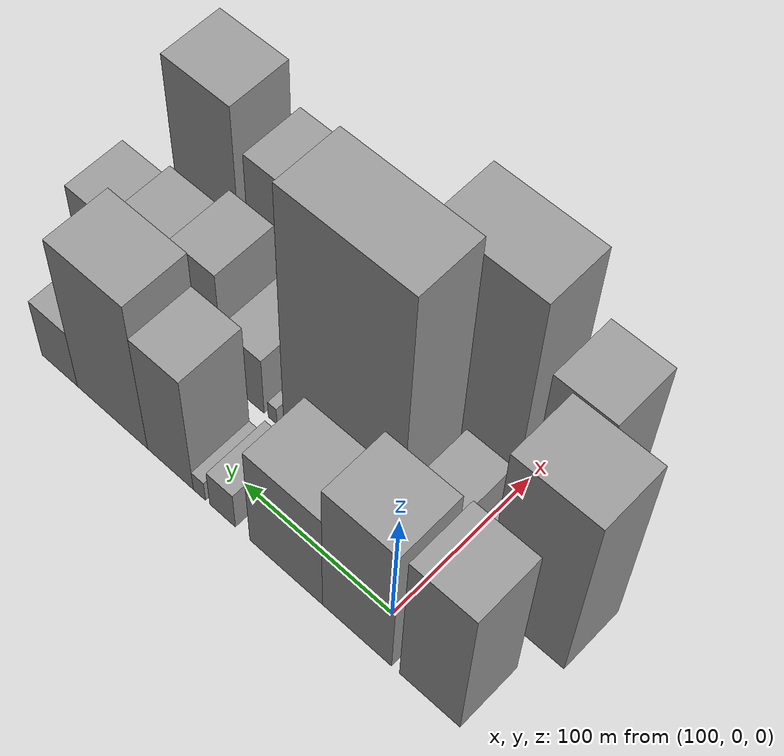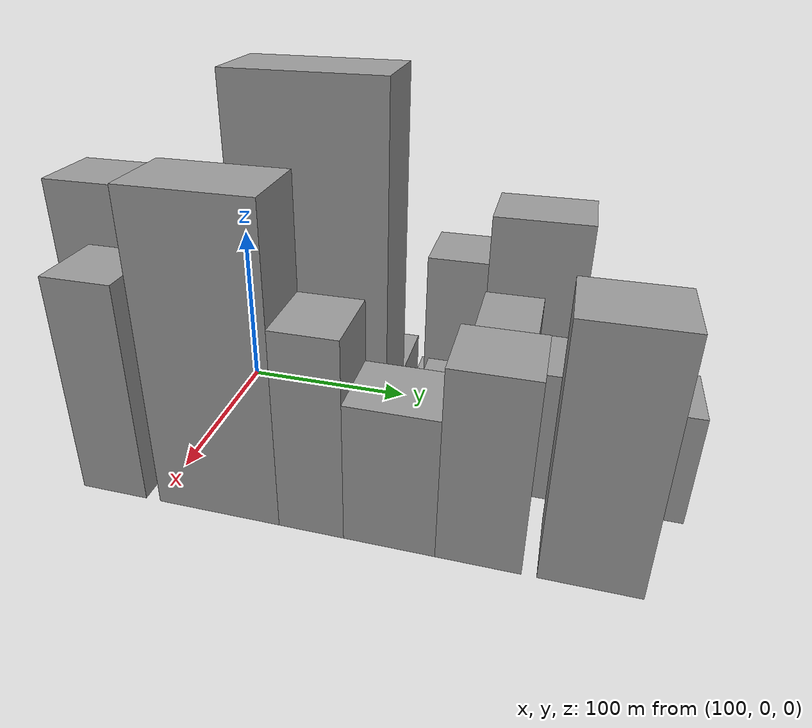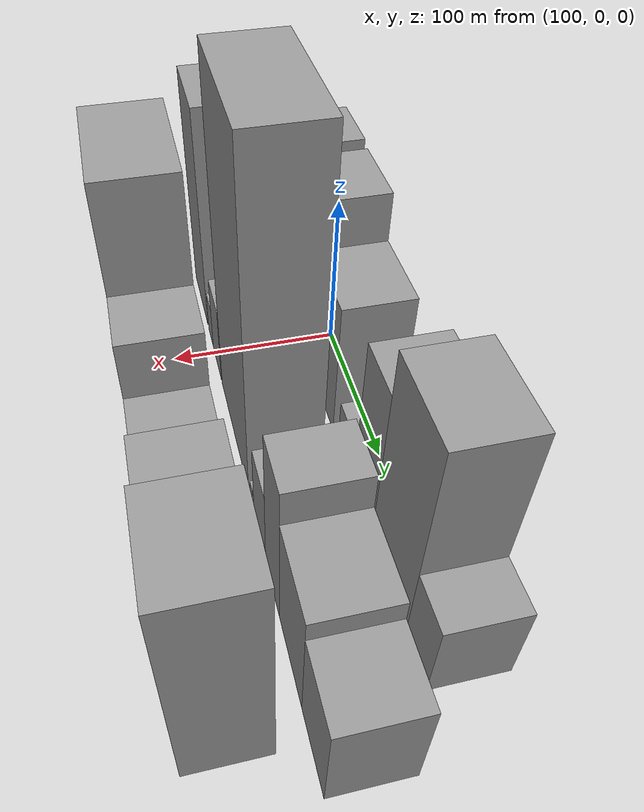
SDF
<sdf version="1.6">
 <world name="default">
  <model name="building_17">
   <static>1</static>
   <pose>100.0000 -41.7449 0 0.000000 0.000000 0.000000</pose>
   <link name="link">
    <pose>0 0 61.50 0 0 0</pose>
    <collision name="collision"><geometry><box><size>40.0000 38.1003 123.0000</size></box></geometry></collision>
    <visual name="visual">
     <cast_shadows>0</cast_shadows>
     <geometry><box><size>40.0000 38.1003 123.0000</size></box></geometry>
     <material>
      <script>
       <uri>model://grey_wall/materials/scripts</uri>
       <uri>model://grey_wall/materials/textures</uri>
       <name>vrc/grey_wall</name>
      </script>
     </material>
    </visual>
   </link>
  </model>
  <model name="building_18">
   <static>1</static>
   <pose>100.0000 4.8909 0 0.000000 0.000000 0.000000</pose>
   <link name="link">
    <pose>0 0 60.00 0 0 0</pose>
    <collision name="collision"><geometry><box><size>40.0000 45.1713 120.0000</size></box></geometry></collision>
    <visual name="visual">
     <cast_shadows>0</cast_shadows>
     <geometry><box><size>40.0000 45.1713 120.0000</size></box></geometry>
     <material>
      <script>
       <uri>model://grey_wall/materials/scripts</uri>
       <uri>model://grey_wall/materials/textures</uri>
       <name>vrc/grey_wall</name>
      </script>
     </material>
    </visual>
   </link>
  </model>
  <model name="building_19">
   <static>1</static>
   <pose>100.0000 52.0612 0 0.000000 0.000000 0.000000</pose>
   <link name="link">
    <pose>0 0 45.00 0 0 0</pose>
    <collision name="collision"><geometry><box><size>40.0000 49.1694 90.0000</size></box></geometry></collision>
    <visual name="visual">
     <cast_shadows>0</cast_shadows>
     <geometry><box><size>40.0000 49.1694 90.0000</size></box></geometry>
     <material>
      <script>
       <uri>model://grey_wall/materials/scripts</uri>
       <uri>model://grey_wall/materials/textures</uri>
       <name>vrc/grey_wall</name>
      </script>
     </material>
    </visual>
   </link>
  </model>
  <model name="building_20">
   <static>1</static>
   <pose>100.0000 95.6489 0 0.000000 0.000000 0.000000</pose>
   <link name="link">
    <pose>0 0 16.50 0 0 0</pose>
    <collision name="collision"><geometry><box><size>40.0000 18.0059 33.0000</size></box></geometry></collision>
    <visual name="visual">
     <cast_shadows>0</cast_shadows>
     <geometry><box><size>40.0000 18.0059 33.0000</size></box></geometry>
     <material>
      <script>
       <uri>model://grey_wall/materials/scripts</uri>
       <uri>model://grey_wall/materials/textures</uri>
       <name>vrc/grey_wall</name>
      </script>
     </material>
    </visual>
   </link>
  </model>
  <model name="building_21">
   <static>1</static>
   <pose>100.0000 111.9884 0 0.000000 0.000000 0.000000</pose>
   <link name="link">
    <pose>0 0 9.00 0 0 0</pose>
    <collision name="collision"><geometry><box><size>40.0000 8.6732 18.0000</size></box></geometry></collision>
    <visual name="visual">
     <cast_shadows>0</cast_shadows>
     <geometry><box><size>40.0000 8.6732 18.0000</size></box></geometry>
     <material>
      <script>
       <uri>model://grey_wall/materials/scripts</uri>
       <uri>model://grey_wall/materials/textures</uri>
       <name>vrc/grey_wall</name>
      </script>
     </material>
    </visual>
   </link>
  </model>
  <model name="building_22">
   <static>1</static>
   <pose>100.0000 132.8876 0 0.000000 0.000000 0.000000</pose>
   <link name="link">
    <pose>0 0 52.50 0 0 0</pose>
    <collision name="collision"><geometry><box><size>40.0000 33.1251 105.0000</size></box></geometry></collision>
    <visual name="visual">
     <cast_shadows>0</cast_shadows>
     <geometry><box><size>40.0000 33.1251 105.0000</size></box></geometry>
     <material>
      <script>
       <uri>model://grey_wall/materials/scripts</uri>
       <uri>model://grey_wall/materials/textures</uri>
       <name>vrc/grey_wall</name>
      </script>
     </material>
    </visual>
   </link>
  </model>
  <model name="building_23">
   <static>1</static>
   <pose>100.0000 175.6709 0 0.000000 0.000000 0.000000</pose>
   <link name="link">
    <pose>0 0 66.00 0 0 0</pose>
    <collision name="collision"><geometry><box><size>40.0000 52.4415 132.0000</size></box></geometry></collision>
    <visual name="visual">
     <cast_shadows>0</cast_shadows>
     <geometry><box><size>40.0000 52.4415 132.0000</size></box></geometry>
     <material>
      <script>
       <uri>model://grey_wall/materials/scripts</uri>
       <uri>model://grey_wall/materials/textures</uri>
       <name>vrc/grey_wall</name>
      </script>
     </material>
    </visual>
   </link>
  </model>
  <model name="building_24">
   <static>1</static>
   <pose>100.0000 215.5347 0 0.000000 0.000000 0.000000</pose>
   <link name="link">
    <pose>0 0 25.50 0 0 0</pose>
    <collision name="collision"><geometry><box><size>40.0000 27.2861 51.0000</size></box></geometry></collision>
    <visual name="visual">
     <cast_shadows>0</cast_shadows>
     <geometry><box><size>40.0000 27.2861 51.0000</size></box></geometry>
     <material>
      <script>
       <uri>model://grey_wall/materials/scripts</uri>
       <uri>model://grey_wall/materials/textures</uri>
       <name>vrc/grey_wall</name>
      </script>
     </material>
    </visual>
   </link>
  </model>
  <model name="building_51">
   <static>1</static>
   <pose>155.0000 -52.1764 0 0.000000 0.000000 0.000000</pose>
   <link name="link">
    <pose>0 0 75.00 0 0 0</pose>
    <collision name="collision"><geometry><box><size>40.0000 49.9542 150.0000</size></box></geometry></collision>
    <visual name="visual">
     <cast_shadows>0</cast_shadows>
     <geometry><box><size>40.0000 49.9542 150.0000</size></box></geometry>
     <material>
      <script>
       <uri>model://grey_wall/materials/scripts</uri>
       <uri>model://grey_wall/materials/textures</uri>
       <name>vrc/grey_wall</name>
      </script>
     </material>
    </visual>
   </link>
  </model>
  <model name="building_52">
   <static>1</static>
   <pose>155.0000 -13.8800 0 0.000000 0.000000 0.000000</pose>
   <link name="link">
    <pose>0 0 15.00 0 0 0</pose>
    <collision name="collision"><geometry><box><size>40.0000 16.6385 30.0000</size></box></geometry></collision>
    <visual name="visual">
     <cast_shadows>0</cast_shadows>
     <geometry><box><size>40.0000 16.6385 30.0000</size></box></geometry>
     <material>
      <script>
       <uri>model://grey_wall/materials/scripts</uri>
       <uri>model://grey_wall/materials/textures</uri>
       <name>vrc/grey_wall</name>
      </script>
     </material>
    </visual>
   </link>
  </model>
  <model name="building_53">
   <static>1</static>
   <pose>155.0000 9.1053 0 0.000000 0.000000 0.000000</pose>
   <link name="link">
    <pose>0 0 27.00 0 0 0</pose>
    <collision name="collision"><geometry><box><size>40.0000 29.3321 54.0000</size></box></geometry></collision>
    <visual name="visual">
     <cast_shadows>0</cast_shadows>
     <geometry><box><size>40.0000 29.3321 54.0000</size></box></geometry>
     <material>
      <script>
       <uri>model://grey_wall/materials/scripts</uri>
       <uri>model://grey_wall/materials/textures</uri>
       <name>vrc/grey_wall</name>
      </script>
     </material>
    </visual>
   </link>
  </model>
  <model name="building_54">
   <static>1</static>
   <pose>155.0000 67.0900 0 0.000000 0.000000 0.000000</pose>
   <link name="link">
    <pose>0 0 105.00 0 0 0</pose>
    <collision name="collision"><geometry><box><size>40.0000 80.6372 210.0000</size></box></geometry></collision>
    <visual name="visual">
     <cast_shadows>0</cast_shadows>
     <geometry><box><size>40.0000 80.6372 210.0000</size></box></geometry>
     <material>
      <script>
       <uri>model://grey_wall/materials/scripts</uri>
       <uri>model://grey_wall/materials/textures</uri>
       <name>vrc/grey_wall</name>
      </script>
     </material>
    </visual>
   </link>
  </model>
  <model name="building_55">
   <static>1</static>
   <pose>155.0000 115.5059 0 0.000000 0.000000 0.000000</pose>
   <link name="link">
    <pose>0 0 7.50 0 0 0</pose>
    <collision name="collision"><geometry><box><size>40.0000 6.1946 15.0000</size></box></geometry></collision>
    <visual name="visual">
     <cast_shadows>0</cast_shadows>
     <geometry><box><size>40.0000 6.1946 15.0000</size></box></geometry>
     <material>
      <script>
       <uri>model://grey_wall/materials/scripts</uri>
       <uri>model://grey_wall/materials/textures</uri>
       <name>vrc/grey_wall</name>
      </script>
     </material>
    </visual>
   </link>
  </model>
  <model name="building_56">
   <static>1</static>
   <pose>155.0000 135.9411 0 0.000000 0.000000 0.000000</pose>
   <link name="link">
    <pose>0 0 25.50 0 0 0</pose>
    <collision name="collision"><geometry><box><size>40.0000 28.6758 51.0000</size></box></geometry></collision>
    <visual name="visual">
     <cast_shadows>0</cast_shadows>
     <geometry><box><size>40.0000 28.6758 51.0000</size></box></geometry>
     <material>
      <script>
       <uri>model://grey_wall/materials/scripts</uri>
       <uri>model://grey_wall/materials/textures</uri>
       <name>vrc/grey_wall</name>
      </script>
     </material>
    </visual>
   </link>
  </model>
  <model name="building_57">
   <static>1</static>
   <pose>155.0000 165.5249 0 0.000000 0.000000 0.000000</pose>
   <link name="link">
    <pose>0 0 48.00 0 0 0</pose>
    <collision name="collision"><geometry><box><size>40.0000 30.4918 96.0000</size></box></geometry></collision>
    <visual name="visual">
     <cast_shadows>0</cast_shadows>
     <geometry><box><size>40.0000 30.4918 96.0000</size></box></geometry>
     <material>
      <script>
       <uri>model://grey_wall/materials/scripts</uri>
       <uri>model://grey_wall/materials/textures</uri>
       <name>vrc/grey_wall</name>
      </script>
     </material>
    </visual>
   </link>
  </model>
  <model name="building_58">
   <static>1</static>
   <pose>155.0000 202.7437 0 0.000000 0.000000 0.000000</pose>
   <link name="link">
    <pose>0 0 37.50 0 0 0</pose>
    <collision name="collision"><geometry><box><size>40.0000 43.9457 75.0000</size></box></geometry></collision>
    <visual name="visual">
     <cast_shadows>0</cast_shadows>
     <geometry><box><size>40.0000 43.9457 75.0000</size></box></geometry>
     <material>
      <script>
       <uri>model://grey_wall/materials/scripts</uri>
       <uri>model://grey_wall/materials/textures</uri>
       <name>vrc/grey_wall</name>
      </script>
     </material>
    </visual>
   </link>
  </model>
  <model name="building_59">
   <static>1</static>
   <pose>155.0000 243.1077 0 0.000000 0.000000 0.000000</pose>
   <link name="link">
    <pose>0 0 31.50 0 0 0</pose>
    <collision name="collision"><geometry><box><size>40.0000 36.7824 63.0000</size></box></geometry></collision>
    <visual name="visual">
     <cast_shadows>0</cast_shadows>
     <geometry><box><size>40.0000 36.7824 63.0000</size></box></geometry>
     <material>
      <script>
       <uri>model://grey_wall/materials/scripts</uri>
       <uri>model://grey_wall/materials/textures</uri>
       <name>vrc/grey_wall</name>
      </script>
     </material>
    </visual>
   </link>
  </model>
  <model name="building_81">
   <static>1</static>
   <pose>210.0000 -25.8234 0 0.000000 0.000000 0.000000</pose>
   <link name="link">
    <pose>0 0 61.50 0 0 0</pose>
    <collision name="collision"><geometry><box><size>40.0000 37.0112 123.0000</size></box></geometry></collision>
    <visual name="visual">
     <cast_shadows>0</cast_shadows>
     <geometry><box><size>40.0000 37.0112 123.0000</size></box></geometry>
     <material>
      <script>
       <uri>model://grey_wall/materials/scripts</uri>
       <uri>model://grey_wall/materials/textures</uri>
       <name>vrc/grey_wall</name>
      </script>
     </material>
    </visual>
   </link>
  </model>
  <model name="building_82">
   <static>1</static>
   <pose>210.0000 33.7337 0 0.000000 0.000000 0.000000</pose>
   <link name="link">
    <pose>0 0 85.50 0 0 0</pose>
    <collision name="collision"><geometry><box><size>40.0000 66.1031 171.0000</size></box></geometry></collision>
    <visual name="visual">
     <cast_shadows>0</cast_shadows>
     <geometry><box><size>40.0000 66.1031 171.0000</size></box></geometry>
     <material>
      <script>
       <uri>model://grey_wall/materials/scripts</uri>
       <uri>model://grey_wall/materials/textures</uri>
       <name>vrc/grey_wall</name>
      </script>
     </material>
    </visual>
   </link>
  </model>
  <model name="building_83">
   <static>1</static>
   <pose>210.0000 83.6116 0 0.000000 0.000000 0.000000</pose>
   <link name="link">
    <pose>0 0 55.50 0 0 0</pose>
    <collision name="collision"><geometry><box><size>40.0000 33.6527 111.0000</size></box></geometry></collision>
    <visual name="visual">
     <cast_shadows>0</cast_shadows>
     <geometry><box><size>40.0000 33.6527 111.0000</size></box></geometry>
     <material>
      <script>
       <uri>model://grey_wall/materials/scripts</uri>
       <uri>model://grey_wall/materials/textures</uri>
       <name>vrc/grey_wall</name>
      </script>
     </material>
    </visual>
   </link>
  </model>
  <model name="building_84">
   <static>1</static>
   <pose>210.0000 123.0802 0 0.000000 0.000000 0.000000</pose>
   <link name="link">
    <pose>0 0 39.00 0 0 0</pose>
    <collision name="collision"><geometry><box><size>40.0000 45.2846 78.0000</size></box></geometry></collision>
    <visual name="visual">
     <cast_shadows>0</cast_shadows>
     <geometry><box><size>40.0000 45.2846 78.0000</size></box></geometry>
     <material>
      <script>
       <uri>model://grey_wall/materials/scripts</uri>
       <uri>model://grey_wall/materials/textures</uri>
       <name>vrc/grey_wall</name>
      </script>
     </material>
    </visual>
   </link>
  </model>
  <model name="building_85">
   <static>1</static>
   <pose>210.0000 166.0316 0 0.000000 0.000000 0.000000</pose>
   <link name="link">
    <pose>0 0 52.50 0 0 0</pose>
    <collision name="collision"><geometry><box><size>40.0000 40.6182 105.0000</size></box></geometry></collision>
    <visual name="visual">
     <cast_shadows>0</cast_shadows>
     <geometry><box><size>40.0000 40.6182 105.0000</size></box></geometry>
     <material>
      <script>
       <uri>model://grey_wall/materials/scripts</uri>
       <uri>model://grey_wall/materials/textures</uri>
       <name>vrc/grey_wall</name>
      </script>
     </material>
    </visual>
   </link>
  </model>
  <model name="building_86">
   <static>1</static>
   <pose>210.0000 216.9131 0 0.000000 0.000000 0.000000</pose>
   <link name="link">
    <pose>0 0 67.50 0 0 0</pose>
    <collision name="collision"><geometry><box><size>40.0000 47.1447 135.0000</size></box></geometry></collision>
    <visual name="visual">
     <cast_shadows>0</cast_shadows>
     <geometry><box><size>40.0000 47.1447 135.0000</size></box></geometry>
     <material>
      <script>
       <uri>model://grey_wall/materials/scripts</uri>
       <uri>model://grey_wall/materials/textures</uri>
       <name>vrc/grey_wall</name>
      </script>
     </material>
    </visual>
   </link>
  </model>
 </world>
</sdf>
